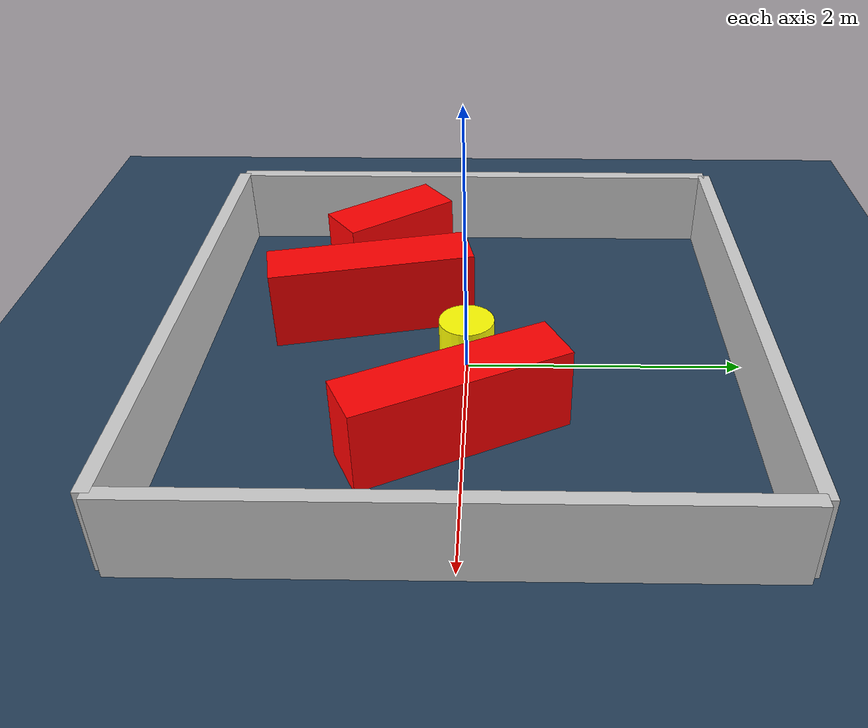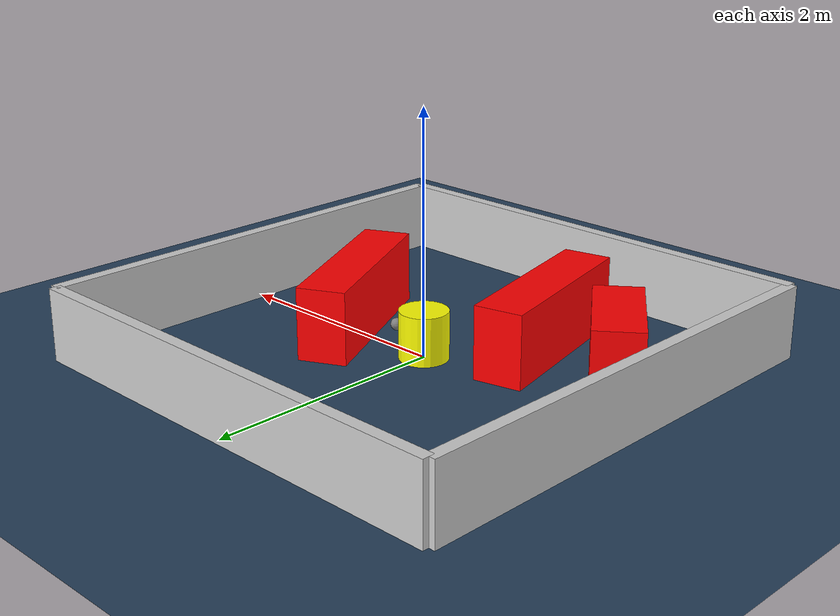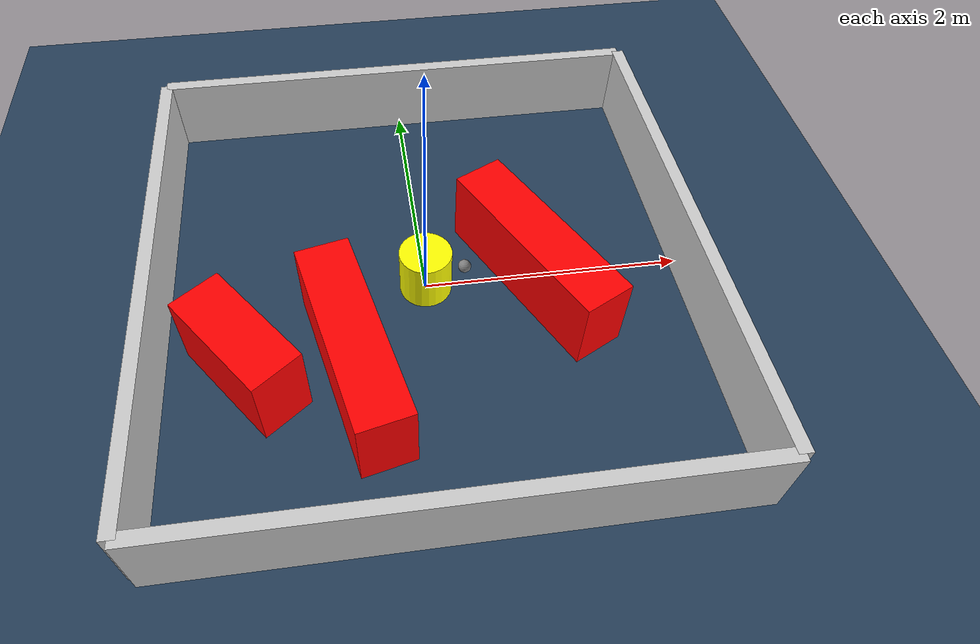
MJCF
<?xml version="1.0" ?>
<mujoco model="generated_environment">
  <option timestep="0.01" integrator="RK4" cone="elliptic"/>
  <default>
    <geom density="1"/>
  </default>
  <asset>
    <texture builtin="gradient" height="3072" rgb1="0.3 0.5 0.7" rgb2="0 0 0" type="skybox" width="512"/>
    <texture builtin="checker" height="300" mark="edge" markrgb="0.8 0.8 0.8" name="groundplane" rgb1="0.2 0.3 0.4" rgb2="0.1 0.2 0.3" type="2d" width="300"/>
    <material name="groundplane" reflectance="0.2" texrepeat="5 5" texture="groundplane" texuniform="true"/>
    <material name="robot" rgba="0.0 1.0 0.0 1"/>
  </asset>
  <worldbody>
    <light dir="0 0 -1" directional="true" pos="0 0 1.5"/>
    <geom condim="4" friction="1.0 0.005 0.001" material="groundplane" name="floor" size="0 0 0.05" type="plane"/>
    <body name="walls">
      <geom name="wall_1" condim="4" pos="-2.0 0.0 0.3" rgba="0.800000011920929 0.800000011920929 0.800000011920929 1.0" size="0.05 2.0 0.3" type="box"/>
      <geom name="wall_2" condim="4" pos="2.0 0.0 0.3" rgba="0.800000011920929 0.800000011920929 0.800000011920929 1.0" size="0.05 2.0 0.3" type="box"/>
      <geom name="wall_3" condim="4" pos="0.0 -2.0 0.3" rgba="0.800000011920929 0.800000011920929 0.800000011920929 1.0" size="2.0 0.05 0.3" type="box"/>
      <geom name="wall_4" condim="4" pos="0.0 2.0 0.3" rgba="0.800000011920929 0.800000011920929 0.800000011920929 1.0" size="2.0 0.05 0.3" type="box"/>
    </body>
    <body name="robot">
      <joint name="joint_x" type="slide" pos="0 0 0" axis="1 0 0"/>
      <joint name="joint_y" type="slide" pos="0 0 0" axis="0 1 0"/>
      <geom name="robot" type="sphere" pos="0.3 0.0 0.2" size="0.05" mass="5." friction="1.0 0.005 0.0001" condim="4" rgba="0.5 0.5 0.5 1.0"/>
      <site name="sensor_ball"/>
    </body>
    <body name="obstacle_movable_1">
      <geom name="obstacle_movable_1" condim="4" pos="0.0 0.0 0.2" euler="0 0 0.0" friction="1.0 0.005 0.001" rgba="1.0 1.0 0.0 1.0" size="0.2 0.2 0.0" type="cylinder" mass="0.1"/>
      <joint type="free"/>
    </body>
    <body name="obstacle_2_static">
      <geom name="obstacle_2_static" condim="4" pos="-1.3569954698160025 -0.6648268510884465 0.3" euler="0 0 307.12977992504636" friction="1.0 0.005 0.001" rgba="1 0 0 1" size="0.47166156984603025 0.2 0.3" type="box"/>
    </body>
    <body name="obstacle_3_static">
      <geom name="obstacle_3_static" condim="4" pos="-0.5875941369824627 -0.7471210499240877 0.3" euler="0 0 282.6351529728452" friction="1.0 0.005 0.001" rgba="1 0 0 1" size="0.7631378504839057 0.2 0.3" type="box"/>
    </body>
    <body name="obstacle_4_static">
      <geom name="obstacle_4_static" condim="4" pos="0.8328581744198593 -0.05790998151178628 0.3" euler="0 0 116.51818512982457" friction="1.0 0.005 0.001" rgba="1 0 0 1" size="0.7708545630585307 0.2 0.3" type="box"/>
    </body>
  </worldbody>
  <actuator>
    <motor name="actuator_x" joint="joint_x" gear="1" ctrlrange="-1 1"/>
    <motor name="actuator_y" joint="joint_y" gear="1" ctrlrange="-1 1"/>
  </actuator>
</mujoco>
